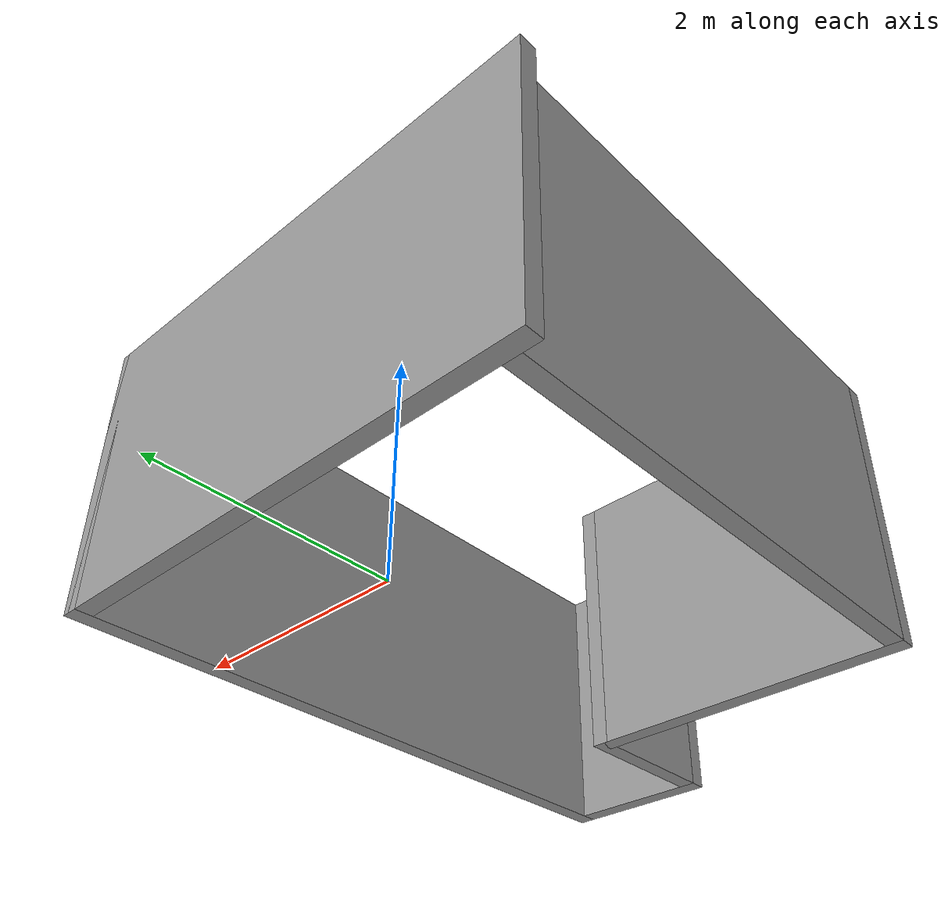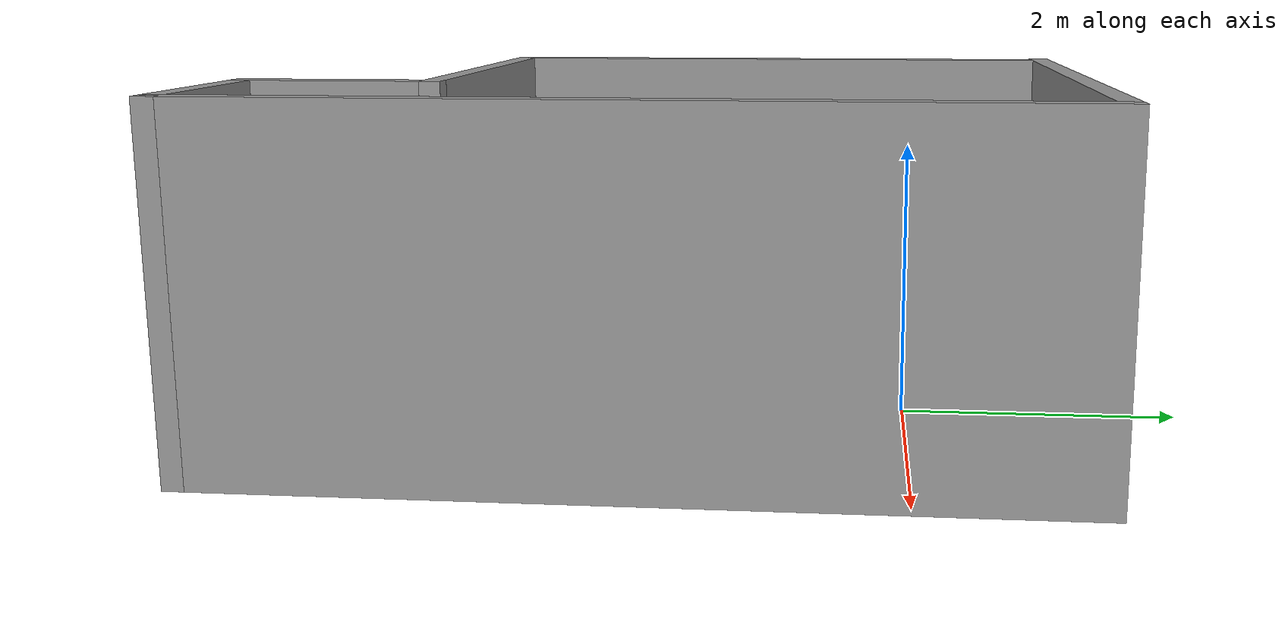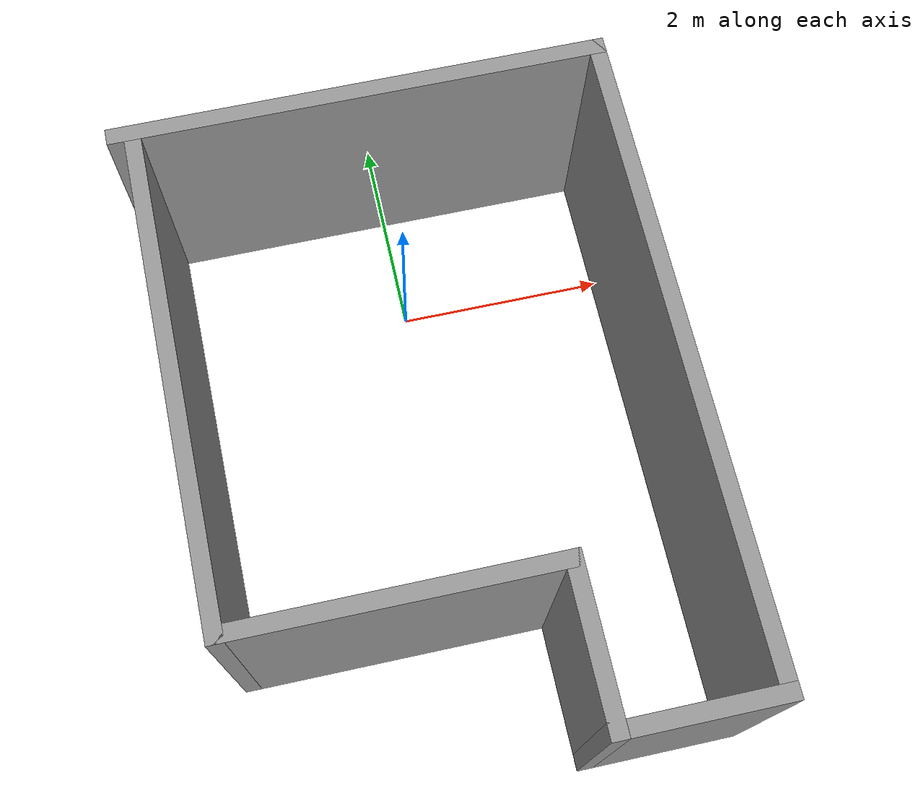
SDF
<?xml version='1.0'?>
<sdf version='1.6'>
  <model name='Room'>
    <pose frame=''>-0.141501 -1.72744 0 0 -0 0</pose>
    <link name='Wall_2'>
      <collision name='Wall_2_Collision'>
        <geometry>
          <box>
            <size>4.5 0.15 2.5</size>
          </box>
        </geometry>
        <pose frame=''>0 0 1.25 0 -0 0</pose>
      </collision>
      <visual name='Wall_2_Visual'>
        <pose frame=''>0 0 1.25 0 -0 0</pose>
        <geometry>
          <box>
            <size>4.5 0.15 2.5</size>
          </box>
        </geometry>
        <material>
          <script>
            <uri>file://media/materials/scripts/gazebo.material</uri>
            <name>Gazebo/Grey</name>
          </script>
          <ambient>1 1 1 1</ambient>
        </material>
        <meta>
          <layer>0</layer>
        </meta>
      </visual>
      <pose frame=''>0 2.925 0 0 -0 0</pose>
    </link>
    <link name='Wall_3'>
      <collision name='Wall_3_Collision'>
        <geometry>
          <box>
            <size>6 0.15 2.5</size>
          </box>
        </geometry>
        <pose frame=''>0 0 1.25 0 -0 0</pose>
      </collision>
      <visual name='Wall_3_Visual'>
        <pose frame=''>0 0 1.25 0 -0 0</pose>
        <geometry>
          <box>
            <size>6 0.15 2.5</size>
          </box>
        </geometry>
        <material>
          <script>
            <uri>file://media/materials/scripts/gazebo.material</uri>
            <name>Gazebo/Grey</name>
          </script>
          <ambient>1 1 1 1</ambient>
        </material>
        <meta>
          <layer>0</layer>
        </meta>
      </visual>
      <pose frame=''>2.175 0 0 0 0 -1.5708</pose>
    </link>
    <link name='Wall_4'>
      <collision name='Wall_4_Collision'>
        <geometry>
          <box>
            <size>1.5 0.15 2.5</size>
          </box>
        </geometry>
        <pose frame=''>0 0 1.25 0 -0 0</pose>
      </collision>
      <visual name='Wall_4_Visual'>
        <pose frame=''>0 0 1.25 0 -0 0</pose>
        <geometry>
          <box>
            <size>1.5 0.15 2.5</size>
          </box>
        </geometry>
        <material>
          <script>
            <uri>file://media/materials/scripts/gazebo.material</uri>
            <name>Gazebo/Grey</name>
          </script>
          <ambient>1 1 1 1</ambient>
        </material>
        <meta>
          <layer>0</layer>
        </meta>
      </visual>
      <pose frame=''>1.5 -2.925 0 0 -0 3.14159</pose>
    </link>
    <link name='Wall_5'>
      <collision name='Wall_5_Collision'>
        <geometry>
          <box>
            <size>1.5 0.15 2.5</size>
          </box>
        </geometry>
        <pose frame=''>0 0 1.25 0 -0 0</pose>
      </collision>
      <visual name='Wall_5_Visual'>
        <pose frame=''>0 0 1.25 0 -0 0</pose>
        <geometry>
          <box>
            <size>1.5 0.15 2.5</size>
          </box>
        </geometry>
        <material>
          <script>
            <uri>file://media/materials/scripts/gazebo.material</uri>
            <name>Gazebo/Grey</name>
          </script>
          <ambient>1 1 1 1</ambient>
        </material>
        <meta>
          <layer>0</layer>
        </meta>
      </visual>
      <pose frame=''>0.825 -2.25 0 0 -0 1.5708</pose>
    </link>
    <link name='Wall_6'>
      <collision name='Wall_6_Collision'>
        <geometry>
          <box>
            <size>3 0.15 2.5</size>
          </box>
        </geometry>
        <pose frame=''>0 0 1.25 0 -0 0</pose>
      </collision>
      <visual name='Wall_6_Visual'>
        <pose frame=''>0 0 1.25 0 -0 0</pose>
        <geometry>
          <box>
            <size>3 0.15 2.5</size>
          </box>
        </geometry>
        <material>
          <script>
            <uri>file://media/materials/scripts/gazebo.material</uri>
            <name>Gazebo/Grey</name>
          </script>
          <ambient>1 1 1 1</ambient>
        </material>
        <meta>
          <layer>0</layer>
        </meta>
      </visual>
      <pose frame=''>-0.6 -1.575 0 0 -0 3.14159</pose>
    </link>
    <link name='Wall_7'>
      <collision name='Wall_7_Collision'>
        <geometry>
          <box>
            <size>4.5 0.15 2.5</size>
          </box>
        </geometry>
        <pose frame=''>0 0 1.25 0 -0 0</pose>
      </collision>
      <visual name='Wall_7_Visual'>
        <pose frame=''>0 0 1.25 0 -0 0</pose>
        <geometry>
          <box>
            <size>4.5 0.15 2.5</size>
          </box>
        </geometry>
        <material>
          <script>
            <uri>file://media/materials/scripts/gazebo.material</uri>
            <name>Gazebo/Grey</name>
          </script>
          <ambient>1 1 1 1</ambient>
        </material>
        <meta>
          <layer>0</layer>
        </meta>
      </visual>
      <pose frame=''>-2.025 0.6 0 0 -0 1.5708</pose>
    </link>
    <static>1</static>
  </model>
</sdf>
